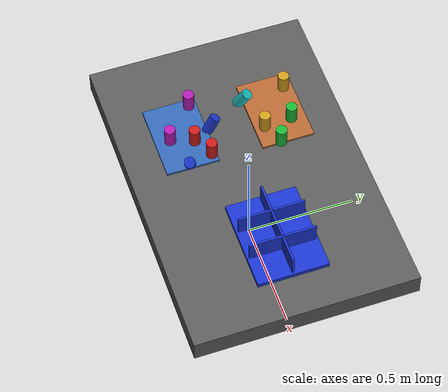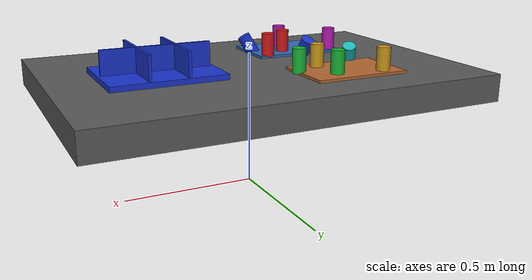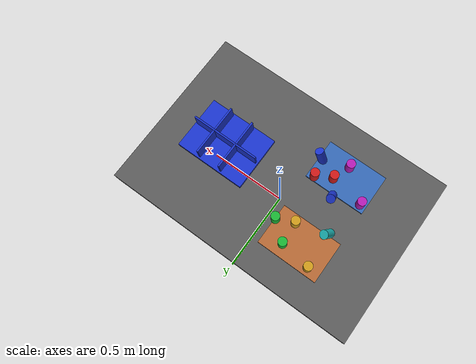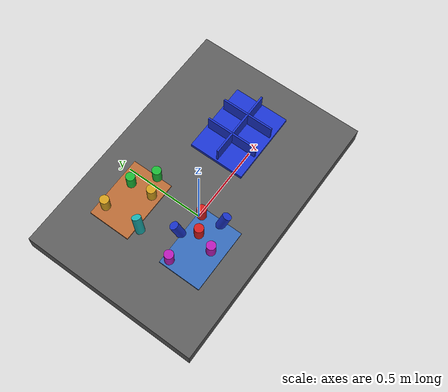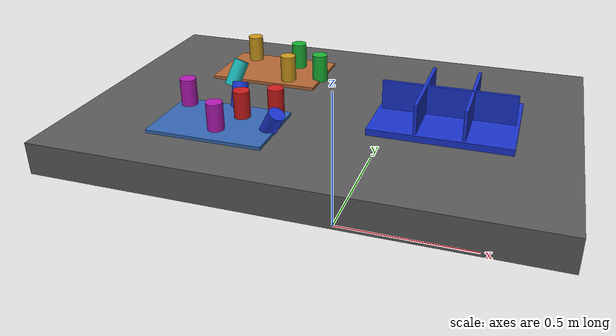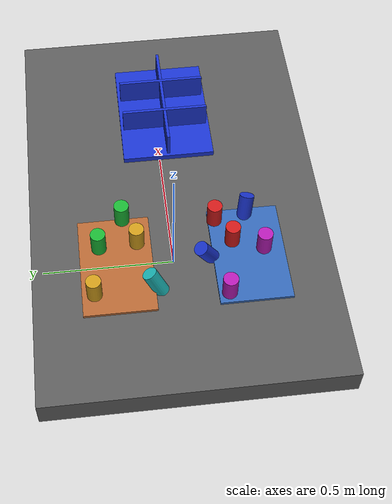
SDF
<?xml version="1.0" ?>
<sdf version="1.9">
  <!-- Standalone M1B scene.  The controller-backed Panda is spawned by the
       existing launch path; this file never alters the frozen M1A cube world. -->
  <world name="industrial_cylinder_v1">
    <physics name="bullet" type="bullet"><max_step_size>0.001</max_step_size><real_time_factor>1.0</real_time_factor></physics>
    <plugin name="gz::sim::systems::Physics" filename="gz-sim-physics-system"><engine><filename>gz-physics-bullet-featherstone-plugin</filename></engine></plugin>
    <plugin name="gz::sim::systems::UserCommands" filename="gz-sim-user-commands-system"/>
    <plugin name="gz::sim::systems::SceneBroadcaster" filename="gz-sim-scene-broadcaster-system"/>
    <plugin name="gz::sim::systems::Sensors" filename="gz-sim-sensors-system"><render_engine>ogre2</render_engine></plugin>
    <gravity>0 0 -9.81</gravity>
    <light type="directional" name="industrial_light"><pose>0 0 5 0 0 0</pose><direction>-0.3 0.2 -0.9</direction><diffuse>0.9 0.9 0.9 1</diffuse></light>
    <model name="industrial_work_table"><static>true</static><link name="link"><pose>0 0 0.4 0 0 0</pose><collision name="collision"><geometry><box><size>1.5 1.0 0.1</size></box></geometry></collision><visual name="visual"><geometry><box><size>1.5 1.0 0.1</size></box></geometry><material><diffuse>0.35 0.35 0.35 1</diffuse></material></visual></link></model>
    <model name="camera_fixture"><static>true</static><link name="camera_rgbd"><pose>-0.80 -0.80 1.40 0 0.77 0.93</pose><sensor name="front_rgbd" type="rgbd_camera"><always_on>1</always_on><update_rate>15</update_rate><topic>/xh/camera/rgbd</topic><camera><horizontal_fov>1.047</horizontal_fov><image><width>640</width><height>480</height><format>R8G8B8</format></image><clip><near>0.1</near><far>4.0</far></clip></camera></sensor></link></model>
    <model name="incoming_zone_a"><static>true</static><link name="link"><pose>-0.28 -0.22 0.455 0 0 0</pose><visual name="visual"><geometry><box><size>0.36 0.24 0.01</size></box></geometry><material><diffuse>0.2 0.4 0.7 1</diffuse></material></visual></link></model>
    <model name="incoming_zone_b"><static>true</static><link name="link"><pose>-0.28 0.22 0.455 0 0 0</pose><visual name="visual"><geometry><box><size>0.36 0.24 0.01</size></box></geometry><material><diffuse>0.7 0.4 0.2 1</diffuse></material></visual></link></model>
    <!-- M1B_RANDOM_PARTS_BEGIN -->
    <model name="cylinder_01"><pose>-0.1389 -0.1223 0.5000 0.0000 0.0000 -2.9040</pose><link name="link"><inertial><mass>0.06</mass></inertial><collision name="collision"><geometry><cylinder><radius>0.025</radius><length>0.09</length></cylinder></geometry></collision><visual name="visual"><geometry><cylinder><radius>0.025</radius><length>0.09</length></cylinder></geometry><material><diffuse>0.800 0.100 0.100 1</diffuse><specular>0.15 0.15 0.15 1</specular></material></visual></link></model>
    <model name="cylinder_02"><pose>-0.2105 0.2731 0.5000 3.1416 0.0000 2.7389</pose><link name="link"><inertial><mass>0.06</mass></inertial><collision name="collision"><geometry><cylinder><radius>0.025</radius><length>0.09</length></cylinder></geometry></collision><visual name="visual"><geometry><cylinder><radius>0.025</radius><length>0.09</length></cylinder></geometry><material><diffuse>0.100 0.700 0.200 1</diffuse><specular>0.15 0.15 0.15 1</specular></material></visual></link></model>
    <model name="cylinder_03"><pose>-0.2795 -0.0800 0.4800 0.4500 -0.3000 -2.4187</pose><link name="link"><inertial><mass>0.06</mass></inertial><collision name="collision"><geometry><cylinder><radius>0.025</radius><length>0.09</length></cylinder></geometry></collision><visual name="visual"><geometry><cylinder><radius>0.025</radius><length>0.09</length></cylinder></geometry><material><diffuse>0.100 0.200 0.800 1</diffuse><specular>0.15 0.15 0.15 1</specular></material></visual></link></model>
    <model name="cylinder_04"><pose>-0.3860 0.2983 0.5000 0.0000 0.0000 -0.1729</pose><link name="link"><inertial><mass>0.06</mass></inertial><collision name="collision"><geometry><cylinder><radius>0.025</radius><length>0.09</length></cylinder></geometry></collision><visual name="visual"><geometry><cylinder><radius>0.025</radius><length>0.09</length></cylinder></geometry><material><diffuse>0.800 0.600 0.100 1</diffuse><specular>0.15 0.15 0.15 1</specular></material></visual></link></model>
    <model name="cylinder_05"><pose>-0.2665 -0.2718 0.5000 3.1416 0.0000 1.0288</pose><link name="link"><inertial><mass>0.06</mass></inertial><collision name="collision"><geometry><cylinder><radius>0.025</radius><length>0.09</length></cylinder></geometry></collision><visual name="visual"><geometry><cylinder><radius>0.025</radius><length>0.09</length></cylinder></geometry><material><diffuse>0.700 0.100 0.700 1</diffuse><specular>0.15 0.15 0.15 1</specular></material></visual></link></model>
    <model name="cylinder_06"><pose>-0.3719 0.0988 0.4800 0.4500 -0.3000 -3.1291</pose><link name="link"><inertial><mass>0.06</mass></inertial><collision name="collision"><geometry><cylinder><radius>0.025</radius><length>0.09</length></cylinder></geometry></collision><visual name="visual"><geometry><cylinder><radius>0.025</radius><length>0.09</length></cylinder></geometry><material><diffuse>0.100 0.700 0.700 1</diffuse><specular>0.15 0.15 0.15 1</specular></material></visual></link></model>
    <model name="cylinder_07"><pose>-0.2290 -0.1707 0.5000 0.0000 0.0000 -0.9404</pose><link name="link"><inertial><mass>0.06</mass></inertial><collision name="collision"><geometry><cylinder><radius>0.025</radius><length>0.09</length></cylinder></geometry></collision><visual name="visual"><geometry><cylinder><radius>0.025</radius><length>0.09</length></cylinder></geometry><material><diffuse>0.800 0.100 0.100 1</diffuse><specular>0.15 0.15 0.15 1</specular></material></visual></link></model>
    <model name="cylinder_08"><pose>-0.1048 0.1879 0.5000 3.1416 0.0000 -1.5002</pose><link name="link"><inertial><mass>0.06</mass></inertial><collision name="collision"><geometry><cylinder><radius>0.025</radius><length>0.09</length></cylinder></geometry></collision><visual name="visual"><geometry><cylinder><radius>0.025</radius><length>0.09</length></cylinder></geometry><material><diffuse>0.100 0.700 0.200 1</diffuse><specular>0.15 0.15 0.15 1</specular></material></visual></link></model>
    <model name="cylinder_09"><pose>-0.1095 -0.2320 0.4800 0.4500 -0.3000 1.7686</pose><link name="link"><inertial><mass>0.06</mass></inertial><collision name="collision"><geometry><cylinder><radius>0.025</radius><length>0.09</length></cylinder></geometry></collision><visual name="visual"><geometry><cylinder><radius>0.025</radius><length>0.09</length></cylinder></geometry><material><diffuse>0.100 0.200 0.800 1</diffuse><specular>0.15 0.15 0.15 1</specular></material></visual></link></model>
    <model name="cylinder_10"><pose>-0.2030 0.1460 0.5000 0.0000 0.0000 0.8680</pose><link name="link"><inertial><mass>0.06</mass></inertial><collision name="collision"><geometry><cylinder><radius>0.025</radius><length>0.09</length></cylinder></geometry></collision><visual name="visual"><geometry><cylinder><radius>0.025</radius><length>0.09</length></cylinder></geometry><material><diffuse>0.800 0.600 0.100 1</diffuse><specular>0.15 0.15 0.15 1</specular></material></visual></link></model>
    <model name="cylinder_11"><pose>-0.4242 -0.1348 0.5000 3.1416 0.0000 1.2839</pose><link name="link"><inertial><mass>0.06</mass></inertial><collision name="collision"><geometry><cylinder><radius>0.025</radius><length>0.09</length></cylinder></geometry></collision><visual name="visual"><geometry><cylinder><radius>0.025</radius><length>0.09</length></cylinder></geometry><material><diffuse>0.700 0.100 0.700 1</diffuse><specular>0.15 0.15 0.15 1</specular></material></visual></link></model>
    <!-- M1B_RANDOM_PARTS_END -->
    <model name="blue_partition_bin"><static>true</static><pose>0.36 0 0.45 0 0 0</pose><link name="link"><collision name="floor"><pose>0 0 0.01 0 0 0</pose><geometry><box><size>0.42 0.32 0.02</size></box></geometry></collision><visual name="floor_visual"><pose>0 0 0.01 0 0 0</pose><geometry><box><size>0.42 0.32 0.02</size></box></geometry><material><diffuse>0.1 0.2 0.8 1</diffuse></material></visual><visual name="row_divider"><pose>0 0 0.06 0 0 0</pose><geometry><box><size>0.40 0.01 0.10</size></box></geometry><material><diffuse>0.1 0.2 0.8 1</diffuse></material></visual><visual name="col_divider_a"><pose>-0.07 0 0.06 0 0 0</pose><geometry><box><size>0.01 0.30 0.10</size></box></geometry><material><diffuse>0.1 0.2 0.8 1</diffuse></material></visual><visual name="col_divider_b"><pose>0.07 0 0.06 0 0 0</pose><geometry><box><size>0.01 0.30 0.10</size></box></geometry><material><diffuse>0.1 0.2 0.8 1</diffuse></material></visual></link></model>
    <!-- Reserved only: second table, bin transport corridor, stackable-bin
         collision volume, and second arm mounting namespace. -->
  </world>
</sdf>
